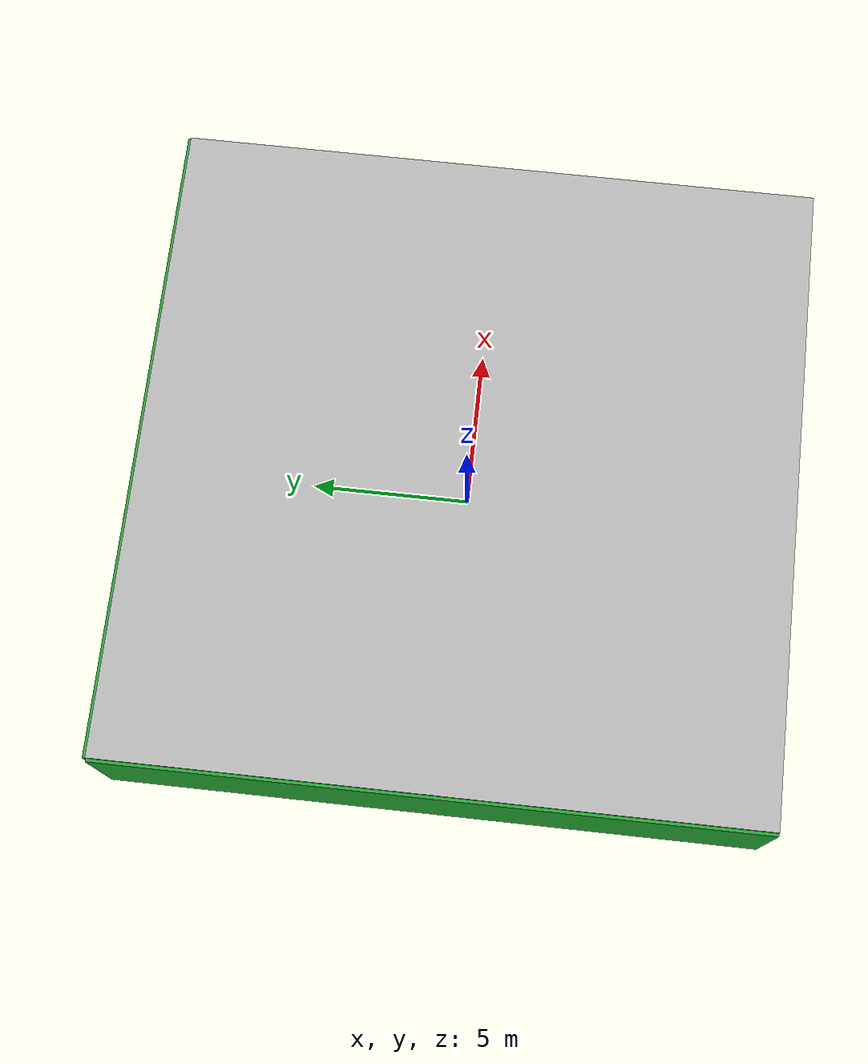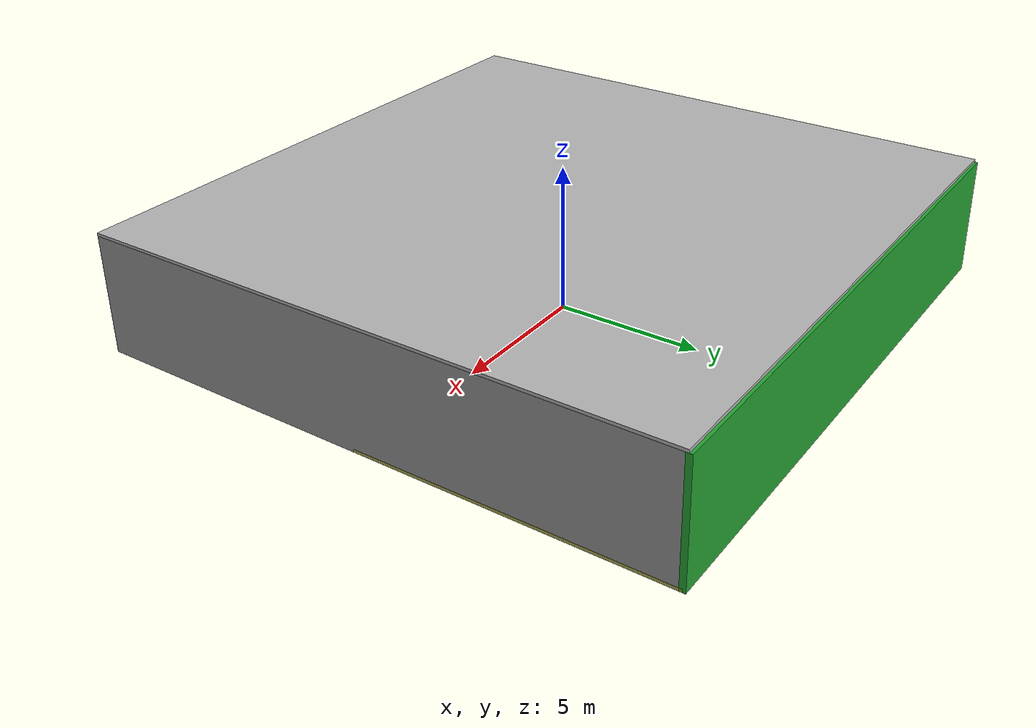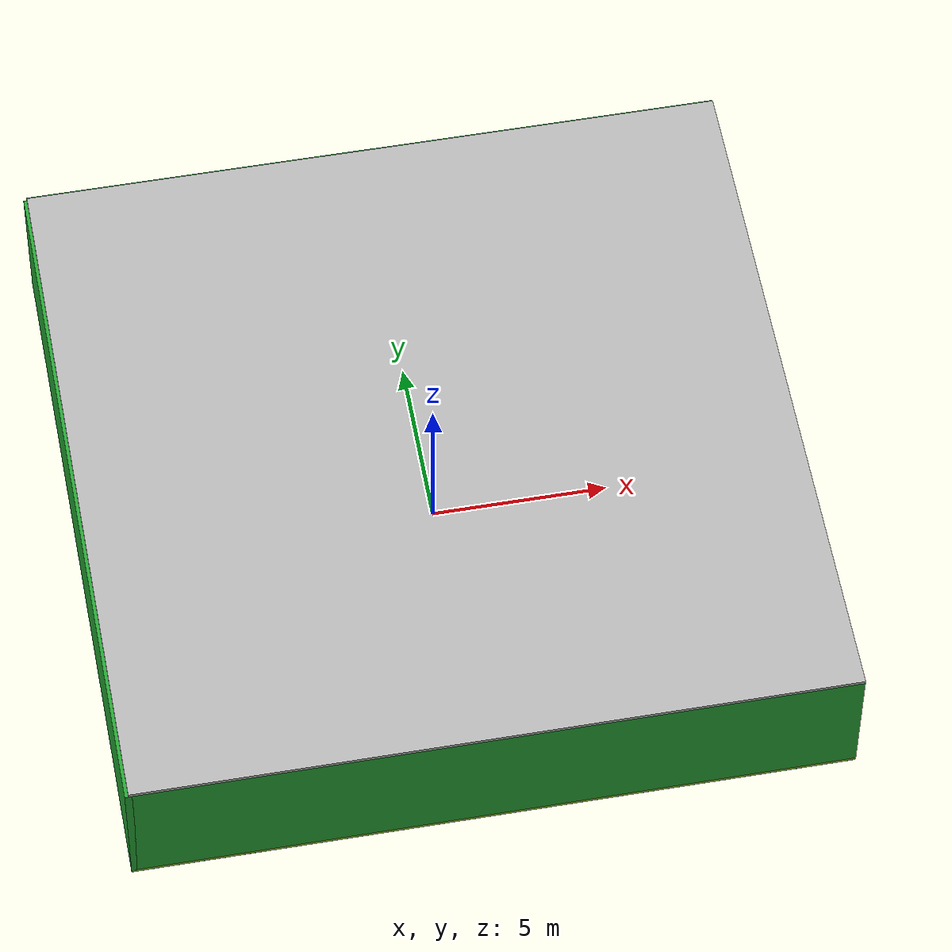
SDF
<sdf version="1.4">
 <world name="default">
  <physics type="ode">
   <max_step_size>0.001</max_step_size>
   <real_time_factor>1</real_time_factor>
   <real_time_update_rate>1000</real_time_update_rate>
   <gravity>0 0 -9.8</gravity>
  </physics>
  <scene><ambient>0.4 0.4 0.4 1</ambient><background>0.7 0.7 0.7 1</background><shadows>1</shadows></scene>
  <model name="Surrounding">
   <static>1</static>
   <link name="Ceiling">
    <collision name="Ceiling_Collision"><geometry><box><size>20 20 0.1</size></box></geometry></collision>
    <visual name="Ceiling_Visual">
     <geometry><box><size>20 20 0.1</size></box></geometry>
     <material>
      <script><uri>file://media/materials/scripts/gazebo.material</uri><name>Gazebo/CloudySky</name></script>
     </material>
    </visual>
    <pose>0 0 4.05 0 0 0</pose>
   </link>
   <link name="Wall_South">
    <collision name="Wall_South_Collision">
     <geometry><box><size>20 0 4</size></box></geometry>
     <pose>0 0 2 0 -0 0</pose>
    </collision>
    <visual name="Wall_South_Visual">
     <pose>0 0 2 0 -0 0</pose>
     <geometry><box><size>20 0 4</size></box></geometry>
     <material>
      <script><uri>file://media/materials/scripts/gazebo.material</uri><name>Gazebo/Green</name></script>
     </material>
    </visual>
    <velocity_decay><linear>0</linear><angular>0</angular></velocity_decay>
    <pose>0 -10 0 0 -0 0</pose>
   </link>
   <link name="Wall_East">
    <collision name="Wall_21_Collision">
     <geometry><box><size>20 0 4</size></box></geometry>
     <pose>0 0 2 0 -0 0</pose>
    </collision>
    <visual name="Wall_21_Visual">
     <pose>0 0 2 0 -0 0</pose>
     <geometry><box><size>20 0 4</size></box></geometry>
     <material>
      <script><uri>file://media/materials/scripts/gazebo.material</uri><name>Gazebo/GreyGradientSky</name></script>
     </material>
    </visual>
    <velocity_decay><linear>0</linear><angular>0</angular></velocity_decay>
    <pose>10 0 0 0 -0 1.5708</pose>
   </link>
   <link name="Wall_North">
    <collision name="Wall_22_Collision">
     <geometry><box><size>20 0.2 4</size></box></geometry>
     <pose>0 0 2 0 -0 0</pose>
    </collision>
    <visual name="Wall_22_Visual">
     <pose>0 0 2 0 -0 0</pose>
     <geometry><box><size>20 0.2 4</size></box></geometry>
     <material>
      <script><uri>file://media/materials/scripts/gazebo.material</uri><name>Gazebo/GreenGlow</name></script>
     </material>
    </visual>
    <velocity_decay><linear>0</linear><angular>0</angular></velocity_decay>
    <pose>0 10 0 0 -0 0</pose>
   </link>
   <link name="Wall_West">
    <collision name="Wall_23_Collision">
     <geometry><box><size>20 0.2 4</size></box></geometry>
     <pose>0 0 2 0 -0 0</pose>
    </collision>
    <visual name="Wall_23_Visual">
     <pose>0 0 2 0 -0 0</pose>
     <geometry><box><size>20 0.2 4</size></box></geometry>
     <material>
      <script><uri>file://media/materials/scripts/gazebo.material</uri><name>Gazebo/Green</name></script>
     </material>
    </visual>
    <velocity_decay><linear>0</linear><angular>0</angular></velocity_decay>
    <pose>-10 0 0 0 0 -1.5708</pose>
   </link>
   <link name="Ground_link">
    <collision name="collision">
     <pose>0 0 .05 0 -0 0</pose>
     <geometry><box><size>20 20 0.1</size></box></geometry>
    </collision>
    <visual name="visual">
     <pose>0 0 .05 0 -0 0</pose>
     <geometry><box><size>20 20 0.1</size></box></geometry>
     <material>
      <script>
       <uri>file://media/materials/scripts/gazebo.material</uri>
       <name>Gazebo/YellowTransparent</name>
      </script>
     </material>
    </visual>
   </link>
   <static>1</static>
  </model>
  <spherical_coordinates>
   <surface_model>EARTH_WGS84</surface_model>
   <latitude_deg>0</latitude_deg>
   <longitude_deg>0</longitude_deg>
   <elevation>0</elevation>
   <heading_deg>0</heading_deg>
  </spherical_coordinates>
  <light name="lightball_0" type="diffuse">
   <diffuse>0.8 0.8 0.8 1</diffuse>
   <specular>0.2 0.2 0.2 1</specular>
   <attenuation>
    <range>100</range>
    <constant>0.7</constant>
    <linear>0.01</linear>
    <quadratic>0.001</quadratic>
   </attenuation>
   <direction>-0.5 0.1 -0.9</direction>
   <pose>-1.35172103669 -0.324117621224 2.63796293697 0 0 0</pose>
  </light>
  <light name="lightball_1" type="diffuse">
   <diffuse>0.8 0.8 0.8 1</diffuse>
   <specular>0.2 0.2 0.2 1</specular>
   <attenuation>
    <range>100</range>
    <constant>0.7</constant>
    <linear>0.01</linear>
    <quadratic>0.001</quadratic>
   </attenuation>
   <direction>-0.5 0.1 -0.9</direction>
   <pose>-7.80889763399 4.09293574063 1.06983455821 0 0 0</pose>
  </light>
  <light name="lightball_2" type="diffuse">
   <diffuse>0.8 0.8 0.8 1</diffuse>
   <specular>0.2 0.2 0.2 1</specular>
   <attenuation>
    <range>100</range>
    <constant>0.7</constant>
    <linear>0.01</linear>
    <quadratic>0.001</quadratic>
   </attenuation>
   <direction>-0.5 0.1 -0.9</direction>
   <pose>-2.06987344569 3.8058389251 2.35405577931 0 0 0</pose>
  </light>
  <light name="lightball_3" type="diffuse">
   <diffuse>0.8 0.8 0.8 1</diffuse>
   <specular>0.2 0.2 0.2 1</specular>
   <attenuation>
    <range>100</range>
    <constant>0.7</constant>
    <linear>0.01</linear>
    <quadratic>0.001</quadratic>
   </attenuation>
   <direction>-0.5 0.1 -0.9</direction>
   <pose>2.23984622563 2.56340133705 0.589255631361 0 0 0</pose>
  </light>
  <light name="lightball_4" type="diffuse">
   <diffuse>0.8 0.8 0.8 1</diffuse>
   <specular>0.2 0.2 0.2 1</specular>
   <attenuation>
    <range>100</range>
    <constant>0.7</constant>
    <linear>0.01</linear>
    <quadratic>0.001</quadratic>
   </attenuation>
   <direction>-0.5 0.1 -0.9</direction>
   <pose>3.91980676373 6.80203153545 2.84022462141 0 0 0</pose>
  </light>
  <light name="lightball_5" type="diffuse">
   <diffuse>0.8 0.8 0.8 1</diffuse>
   <specular>0.2 0.2 0.2 1</specular>
   <attenuation>
    <range>100</range>
    <constant>0.7</constant>
    <linear>0.01</linear>
    <quadratic>0.001</quadratic>
   </attenuation>
   <direction>-0.5 0.1 -0.9</direction>
   <pose>8.68088359488 4.39715026741 0.785155078555 0 0 0</pose>
  </light>
  <light name="lightball_6" type="diffuse">
   <diffuse>0.8 0.8 0.8 1</diffuse>
   <specular>0.2 0.2 0.2 1</specular>
   <attenuation>
    <range>100</range>
    <constant>0.7</constant>
    <linear>0.01</linear>
    <quadratic>0.001</quadratic>
   </attenuation>
   <direction>-0.5 0.1 -0.9</direction>
   <pose>1.14694803146 -5.90844314274 1.6968292435 0 0 0</pose>
  </light>
  <light name="lightball_7" type="diffuse">
   <diffuse>0.8 0.8 0.8 1</diffuse>
   <specular>0.2 0.2 0.2 1</specular>
   <attenuation>
    <range>100</range>
    <constant>0.7</constant>
    <linear>0.01</linear>
    <quadratic>0.001</quadratic>
   </attenuation>
   <direction>-0.5 0.1 -0.9</direction>
   <pose>-9.59389451679 1.53761836298 3.74951025513 0 0 0</pose>
  </light>
  <light name="lightball_8" type="diffuse">
   <diffuse>0.8 0.8 0.8 1</diffuse>
   <specular>0.2 0.2 0.2 1</specular>
   <attenuation>
    <range>100</range>
    <constant>0.7</constant>
    <linear>0.01</linear>
    <quadratic>0.001</quadratic>
   </attenuation>
   <direction>-0.5 0.1 -0.9</direction>
   <pose>-6.01294332025 -9.09600188944 2.73705062546 0 0 0</pose>
  </light>
  <light name="lightball_9" type="diffuse">
   <diffuse>0.8 0.8 0.8 1</diffuse>
   <specular>0.2 0.2 0.2 1</specular>
   <attenuation>
    <range>100</range>
    <constant>0.7</constant>
    <linear>0.01</linear>
    <quadratic>0.001</quadratic>
   </attenuation>
   <direction>-0.5 0.1 -0.9</direction>
   <pose>3.49954151001 6.949317419 1.47447552142 0 0 0</pose>
  </light>
  <light name="lightball_10" type="diffuse">
   <diffuse>0.8 0.8 0.8 1</diffuse>
   <specular>0.2 0.2 0.2 1</specular>
   <attenuation>
    <range>100</range>
    <constant>0.7</constant>
    <linear>0.01</linear>
    <quadratic>0.001</quadratic>
   </attenuation>
   <direction>-0.5 0.1 -0.9</direction>
   <pose>-7.91074880188 3.84514161659 3.80302458209 0 0 0</pose>
  </light>
  <light name="lightball_11" type="diffuse">
   <diffuse>0.8 0.8 0.8 1</diffuse>
   <specular>0.2 0.2 0.2 1</specular>
   <attenuation>
    <range>100</range>
    <constant>0.7</constant>
    <linear>0.01</linear>
    <quadratic>0.001</quadratic>
   </attenuation>
   <direction>-0.5 0.1 -0.9</direction>
   <pose>7.8287801641 3.40180654989 3.85890423248 0 0 0</pose>
  </light>
  <light name="lightball_12" type="diffuse">
   <diffuse>0.8 0.8 0.8 1</diffuse>
   <specular>0.2 0.2 0.2 1</specular>
   <attenuation>
    <range>100</range>
    <constant>0.7</constant>
    <linear>0.01</linear>
    <quadratic>0.001</quadratic>
   </attenuation>
   <direction>-0.5 0.1 -0.9</direction>
   <pose>9.56340107783 7.67612766518 2.09644537182 0 0 0</pose>
  </light>
  <include><uri>model://cabinet</uri><pose>-1.88176129289 -8.58290733041 0 0 0 1.23655090921</pose></include>
  <include>
   <uri>model://robocup_3Dsim_goal</uri>
   <pose>-1.48185690122 4.00140752712 0 0 0 2.70523251296</pose>
  </include>
  <include>
   <uri>model://construction_cone</uri>
   <pose>1.93698004309 -4.67829540211 0 0 0 2.74481451147</pose>
  </include>
  <include><uri>model://cabinet</uri><pose>0.630493049174 -0.481161627157 0 0 0 1.78658239235</pose></include>
  <include>
   <uri>model://textured_shapes</uri>
   <pose>7.09151229251 4.98085013173 0 0 0 0.758965872383</pose>
  </include>
 </world>
</sdf>

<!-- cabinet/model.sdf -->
<sdf version="1.5">
  <model name="cabinet">
    <static>true</static>
    <link name="cabinet_bottom_plate">
      <inertial>
        <pose>0 0 -1 0 0 0</pose>
        <inertia>
          <ixx>2.050000</ixx>
          <ixy>0</ixy>
          <ixz>0</ixz>
          <iyy>2.050000</iyy>
          <iyz>0</iyz>
          <izz>2.050000</izz>
        </inertia>
        <mass>25.000000</mass>
      </inertial>
      <collision name="cabinet_bottom_plate_geom">
        <pose>0 0 0.010000 0 0 0</pose>
        <geometry>
          <box>
            <size>0.450000 0.450000 0.020000</size>
          </box>
        </geometry>
      </collision>
      <visual name="cabinet_bottom_plate_geom_visual">
        <pose>0 0 0.010000 0 0 0</pose>
        <geometry>
          <box>
            <size>0.450000 0.450000 0.020000</size>
          </box>
        </geometry>
        <material>
          <script>
            <uri>model://media/materials/scripts/gazebo.material</uri>
            <name>Gazebo/Wood</name>
          </script>
        </material>
      </visual>
      <collision name="cabinet_bottom_plate_geom_cabinet_back_plate">
        <pose>0.235000 0 0.510000 0 0 0</pose>
        <geometry>
          <box>
            <size>0.020000 0.450000 1.020000</size>
          </box>
        </geometry>
      </collision>
      <visual name="cabinet_bottom_plate_geom_cabinet_back_plate_visual">
        <pose>0.235000 0 0.510000 0 0 0</pose>
        <geometry>
          <box>
            <size>0.020000 0.450000 1.020000</size>
          </box>
        </geometry>
        <material>
          <script>
            <uri>model://media/materials/scripts/gazebo.material</uri>
            <name>Gazebo/Wood</name>
          </script>
        </material>
      </visual>
      <collision name="cabinet_bottom_plate_geom_cabinet_left_plate">
        <pose>0 0.235000 0.510000 0 0 0</pose>
        <geometry>
          <box>
            <size>0.450000 0.020000 1.020000</size>
          </box>
        </geometry>
      </collision>
      <visual name="cabinet_bottom_plate_geom_cabinet_left_plate_visual">
        <pose>0 0.235000 0.510000 0 0 0</pose>
        <geometry>
          <box>
            <size>0.450000 0.020000 1.020000</size>
          </box>
        </geometry>
        <material>
          <script>
            <uri>model://media/materials/scripts/gazebo.material</uri>
            <name>Gazebo/Wood</name>
          </script>
        </material>
      </visual>
      <collision name="cabinet_bottom_plate_geom_cabinet_middle_plate">
        <pose>0 0 0.510000 0 0 0</pose>
        <geometry>
          <box>
            <size>0.450000 0.450000 0.020000</size>
          </box>
        </geometry>
      </collision>
      <visual name="cabinet_bottom_plate_geom_cabinet_middle_plate_visual">
        <pose>0 0 0.510000 0 0 0</pose>
        <geometry>
          <box>
            <size>0.450000 0.450000 0.020000</size>
          </box>
        </geometry>
        <material>
          <script>
            <uri>model://media/materials/scripts/gazebo.material</uri>
            <name>Gazebo/Wood</name>
          </script>
        </material>
      </visual>
      <collision name="cabinet_bottom_plate_geom_cabinet_right_plate">
        <pose>0 -0.235000 0.510000 0 0 0</pose>
        <geometry>
          <box>
            <size>0.450000 0.020000 1.020000</size>
          </box>
        </geometry>
      </collision>
      <visual name="cabinet_bottom_plate_geom_cabinet_right_plate_visual">
        <pose>0 -0.235000 0.510000 0 0 0</pose>
        <geometry>
          <box>
            <size>0.450000 0.020000 1.020000</size>
          </box>
        </geometry>
        <material>
          <script>
            <uri>model://media/materials/scripts/gazebo.material</uri>
            <name>Gazebo/Wood</name>
          </script>
        </material>
      </visual>
      <collision name="cabinet_bottom_plate_geom_cabinet_top_plate">
        <pose>0 0 1.010000 0 0 0</pose>
        <geometry>
          <box>
            <size>0.450000 0.450000 0.020000</size>
          </box>
        </geometry>
      </collision>
      <visual name="cabinet_bottom_plate_geom_cabinet_top_plate_visual">
        <pose>0 0 1.010000 0 0 0</pose>
        <geometry>
          <box>
            <size>0.450000 0.450000 0.020000</size>
          </box>
        </geometry>
        <material>
          <script>
            <uri>model://media/materials/scripts/gazebo.material</uri>
            <name>Gazebo/Wood</name>
          </script>
        </material>
      </visual>
    </link>
  </model>
</sdf>

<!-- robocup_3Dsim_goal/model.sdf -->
<sdf version="1.5">
  <model name="robocup_3d_goal">
    <static>true</static>
    <link name="left_post">
      <pose>0 1.05 0.45 0 0 0</pose>
      <collision name="collision">
        <geometry>
          <cylinder>
            <radius>0.05</radius>
            <length>0.9</length>
          </cylinder>
        </geometry>
      </collision>
      <visual name="visual">
        <geometry>
          <cylinder>
            <radius>0.05</radius>
            <length>0.9</length>
          </cylinder>
        </geometry>
        <material>
          <script>
            <uri>file://media/materials/scripts/gazebo.material</uri>
            <name>Gazebo/ZincYellow</name>
          </script>
        </material>
      </visual>
    </link>
    <link name="left_support_horiz_lower">
      <pose>0.30 1.05 0.01 0 0 0</pose>
      <collision name="collision">
        <geometry>
          <box>
            <size>0.50 0.02 0.02</size>
          </box>
        </geometry>
      </collision>
      <visual name="visual">
        <geometry>
          <box>
            <size>0.50 0.02 0.02</size>
          </box>
        </geometry>
        <material>
          <script>
            <uri>file://media/materials/scripts/gazebo.material</uri>
            <name>Gazebo/White</name>
          </script>
        </material>
      </visual>
    </link>
    <link name="left_support_horiz_upper">
      <pose>0.30 1.05 0.79 0 0 0</pose>
      <collision name="collision">
        <geometry>
          <box>
            <size>0.50 0.02 0.02</size>
          </box>
        </geometry>
      </collision>
      <visual name="visual">
        <geometry>
          <box>
            <size>0.50 0.02 0.02</size>
          </box>
        </geometry>
        <material>
          <script>
            <uri>file://media/materials/scripts/gazebo.material</uri>
            <name>Gazebo/White</name>
          </script>
        </material>
      </visual>
    </link>
    <link name="left_support_vertical">
      <pose>0.56 1.05 0.4 0 1.5708 0</pose>
      <collision name="collision">
        <geometry>
          <box>
            <size>0.80 0.02 0.02</size>
          </box>
        </geometry>
      </collision>
      <visual name="visual">
        <geometry>
          <box>
            <size>0.80 0.02 0.02</size>
          </box>
        </geometry>
        <material>
          <script>
            <uri>file://media/materials/scripts/gazebo.material</uri>
            <name>Gazebo/White</name>
          </script>
        </material>
      </visual>
    </link>
    <link name="right_support_horiz_lower">
      <pose>0.30 -1.05 0.01 0 0 0</pose>
      <collision name="collision">
        <geometry>
          <box>
            <size>0.50 0.02 0.02</size>
          </box>
        </geometry>
      </collision>
      <visual name="visual">
        <geometry>
          <box>
            <size>0.50 0.02 0.02</size>
          </box>
        </geometry>
        <material>
          <script>
            <uri>file://media/materials/scripts/gazebo.material</uri>
            <name>Gazebo/White</name>
          </script>
        </material>
      </visual>
    </link>
    <link name="right_support_horiz_upper">
      <pose>0.30 -1.05 0.79 0 0 0</pose>
      <collision name="collision">
        <geometry>
          <box>
            <size>0.50 0.02 0.02</size>
          </box>
        </geometry>
      </collision>
      <visual name="visual">
        <geometry>
          <box>
            <size>0.50 0.02 0.02</size>
          </box>
        </geometry>
        <material>
          <script>
            <uri>file://media/materials/scripts/gazebo.material</uri>
            <name>Gazebo/White</name>
          </script>
        </material>
      </visual>
    </link>
    <link name="right_support_vertical">
      <pose>0.56 -1.05 0.4 0 1.5708 0</pose>
      <collision name="collision">
        <geometry>
          <box>
            <size>0.80 0.02 0.02</size>
          </box>
        </geometry>
      </collision>
      <visual name="visual">
        <geometry>
          <box>
            <size>0.80 0.02 0.02</size>
          </box>
        </geometry>
        <material>
          <script>
            <uri>file://media/materials/scripts/gazebo.material</uri>
            <name>Gazebo/White</name>
          </script>
        </material>
      </visual>
    </link>
    <link name="center_support_horiz_lower">
      <pose>0.56 0 0.01 0 1.5708 0</pose>
      <collision name="collision">
        <geometry>
          <box>
            <size>0.02 2.08 0.02</size>
          </box>
        </geometry>
      </collision>
      <visual name="visual">
        <geometry>
          <box>
            <size>0.02 2.08 0.02</size>
          </box>
        </geometry>
        <material>
          <script>
            <uri>file://media/materials/scripts/gazebo.material</uri>
            <name>Gazebo/White</name>
          </script>
        </material>
      </visual>
    </link>
    <link name="center_support_horiz_upper">
      <pose>0.56 0 0.79 0 1.5708 0</pose>
      <collision name="collision">
        <geometry>
          <box>
            <size>0.02 2.08 0.02</size>
          </box>
        </geometry>
      </collision>
      <visual name="visual">
        <geometry>
          <box>
            <size>0.02 2.08 0.02</size>
          </box>
        </geometry>
        <material>
          <script>
            <uri>file://media/materials/scripts/gazebo.material</uri>
            <name>Gazebo/White</name>
          </script>
        </material>
      </visual>
    </link>
    <link name="right_post">
      <pose>0 -1.05 0.45 0 0 0</pose>
      <collision name="collision">
        <geometry>
          <cylinder>
            <radius>0.05</radius>
            <length>0.9</length>
          </cylinder>
        </geometry>
      </collision>
      <visual name="visual">
        <geometry>
          <cylinder>
            <radius>0.05</radius>
            <length>0.9</length>
          </cylinder>
        </geometry>
        <material>
          <script>
            <uri>file://media/materials/scripts/gazebo.material</uri>
            <name>Gazebo/ZincYellow</name>
          </script>
        </material>
      </visual>
    </link>
    <link name="crossbar">
      <pose>0 0 0.85 1.57 1.57 0</pose>
      <collision name="collision">
        <geometry>
          <cylinder>
            <radius>0.05</radius>
            <length>2.0</length>
          </cylinder>
        </geometry>
      </collision>
      <visual name="visual">
        <geometry>
          <cylinder>
            <radius>0.05</radius>
            <length>2.0</length>
          </cylinder>
        </geometry>
        <material>
          <script>
            <uri>file://media/materials/scripts/gazebo.material</uri>
            <name>Gazebo/ZincYellow</name>
          </script>
        </material>
      </visual>
    </link>
    <link name="center_net">
      <pose>0.56 0 0.40 0 0 0</pose>
      <collision name="collision">
        <geometry>
          <box>
            <size>0.01 2.1 0.80</size>
          </box>
        </geometry>
      </collision>
      <visual name="visual">
        <geometry>
          <box>
            <size>0.01 2.1 0.80</size>
          </box>
        </geometry>
        <material>
          <script>
            <uri>model://../model_source/models/robocup09_spl_field/materials/scripts/</uri>
            <uri>model://../model_source/models/robocup09_spl_field/materials/textures/</uri>
            <name>RoboCup/Net</name>
          </script>
        </material>
      </visual>
    </link>
    <link name="left_net">
      <pose>0.30 1.05 0.40 0 0 0</pose>
      <collision name="collision">
        <geometry>
          <box>
            <size>0.50 0.01 0.76</size>
          </box>
        </geometry>
      </collision>
      <visual name="visual">
        <geometry>
          <box>
            <size>0.50 0.01 0.76</size>
          </box>
        </geometry>
        <material>
          <script>
            <uri>model://../model_source/models/robocup09_spl_field/materials/scripts/</uri>
            <uri>model://../model_source/models/robocup09_spl_field/materials/textures/</uri>
            <name>RoboCup/Net</name>
          </script>
        </material>
      </visual>
    </link>
    <link name="right_net">
      <pose>0.30 -1.05 0.40 0 0 0</pose>
      <collision name="collision">
        <geometry>
          <box>
            <size>0.50 0.01 0.76</size>
          </box>
        </geometry>
      </collision>
      <visual name="visual">
        <geometry>
          <box>
            <size>0.50 0.01 0.76</size>
          </box>
        </geometry>
        <material>
          <script>
            <uri>model://../model_source/models/robocup09_spl_field/materials/scripts/</uri>
            <uri>model://../model_source/models/robocup09_spl_field/materials/textures/</uri>
            <name>RoboCup/Net</name>
          </script>
        </material>
      </visual>
    </link>
  </model>
</sdf>

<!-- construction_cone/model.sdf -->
<sdf version="1.5">
  <model name="Construction Cone">
    <link name="link">
      <collision name="collision">
        <geometry>
          <mesh>
            <scale>10 10 10</scale>
            <uri>file://isr-testbed/construction_cone/meshes/construction_cone.dae</uri>
          </mesh>
        </geometry>
      </collision>
      <visual name="visual">
        <geometry>
          <mesh>
            <scale>10 10 10</scale>
            <uri>file://isr-testbed/construction_cone/meshes/construction_cone.dae</uri>
          </mesh>
        </geometry>
      </visual>
    </link>
  </model>
</sdf>

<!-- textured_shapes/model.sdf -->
<sdf version="1.6">
  <model name="textured_shapes">
    <pose>0 0 0.5 0 0 0</pose>
    <link name="box">
      <pose>0 -1.5 0 0 0 0</pose>
      <collision name="collision">
        <geometry>
          <box>
            <size>1 1 1</size>
          </box>
        </geometry>
      </collision>
      <visual name="visual">
        <geometry>
          <box>
            <size>1 1 1</size>
          </box>
        </geometry>
        <material>
          <script>
            <uri>model://../model_source/models/textured_shapes/materials/scripts</uri>
            <uri>model://../model_source/models/textured_shapes/materials/textures</uri>
            <name>TexturedShape/Squares</name>
          </script>
        </material>
      </visual>
    </link>
    <link name="sphere">
      <collision name="collision">
        <geometry>
          <sphere>
            <radius>0.5</radius>
          </sphere>
        </geometry>
      </collision>
      <visual name="visual">
        <geometry>
          <sphere>
            <radius>0.5</radius>
          </sphere>
        </geometry>
        <material>
          <script>
            <uri>model://../model_source/models/textured_shapes/materials/scripts</uri>
            <uri>model://../model_source/models/textured_shapes/materials/textures</uri>
            <name>TexturedShape/Squares</name>
          </script>
        </material>
      </visual>
    </link>
    <link name="cylinder">
      <pose>0 1.5 0 0 0 0</pose>
      <collision name="collision">
        <geometry>
          <cylinder>
            <radius>0.5</radius>
            <length>1</length>
          </cylinder>
        </geometry>
      </collision>
      <visual name="visual">
        <geometry>
          <cylinder>
            <radius>0.5</radius>
            <length>1</length>
          </cylinder>
        </geometry>
        <material>
          <script>
            <uri>model://../model_source/models/textured_shapes/materials/scripts</uri>
            <uri>model://../model_source/models/textured_shapes/materials/textures</uri>
            <name>TexturedShape/Squares</name>
          </script>
        </material>
      </visual>
    </link>
  </model>
</sdf>
